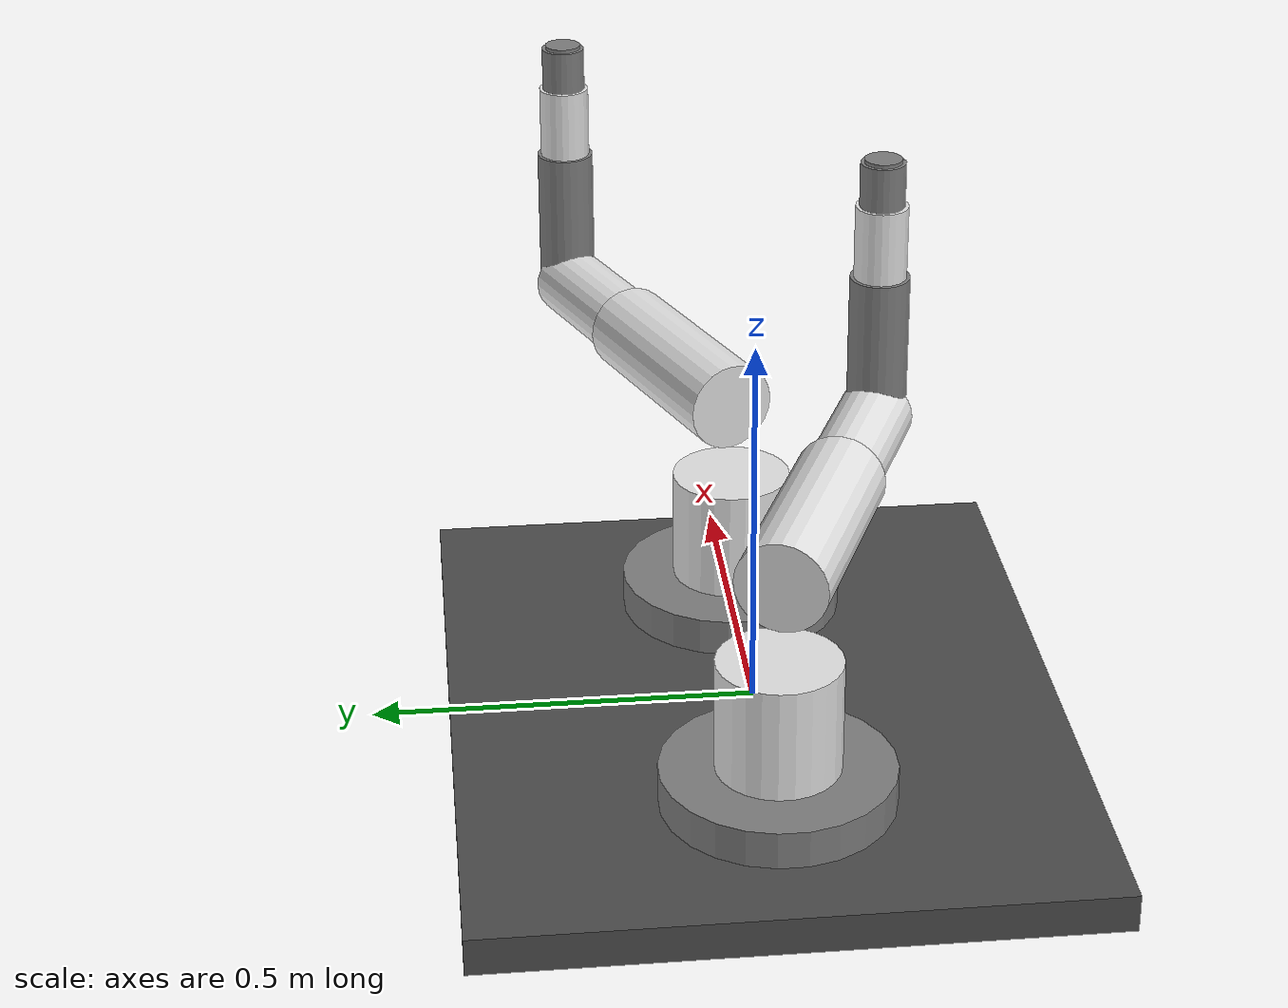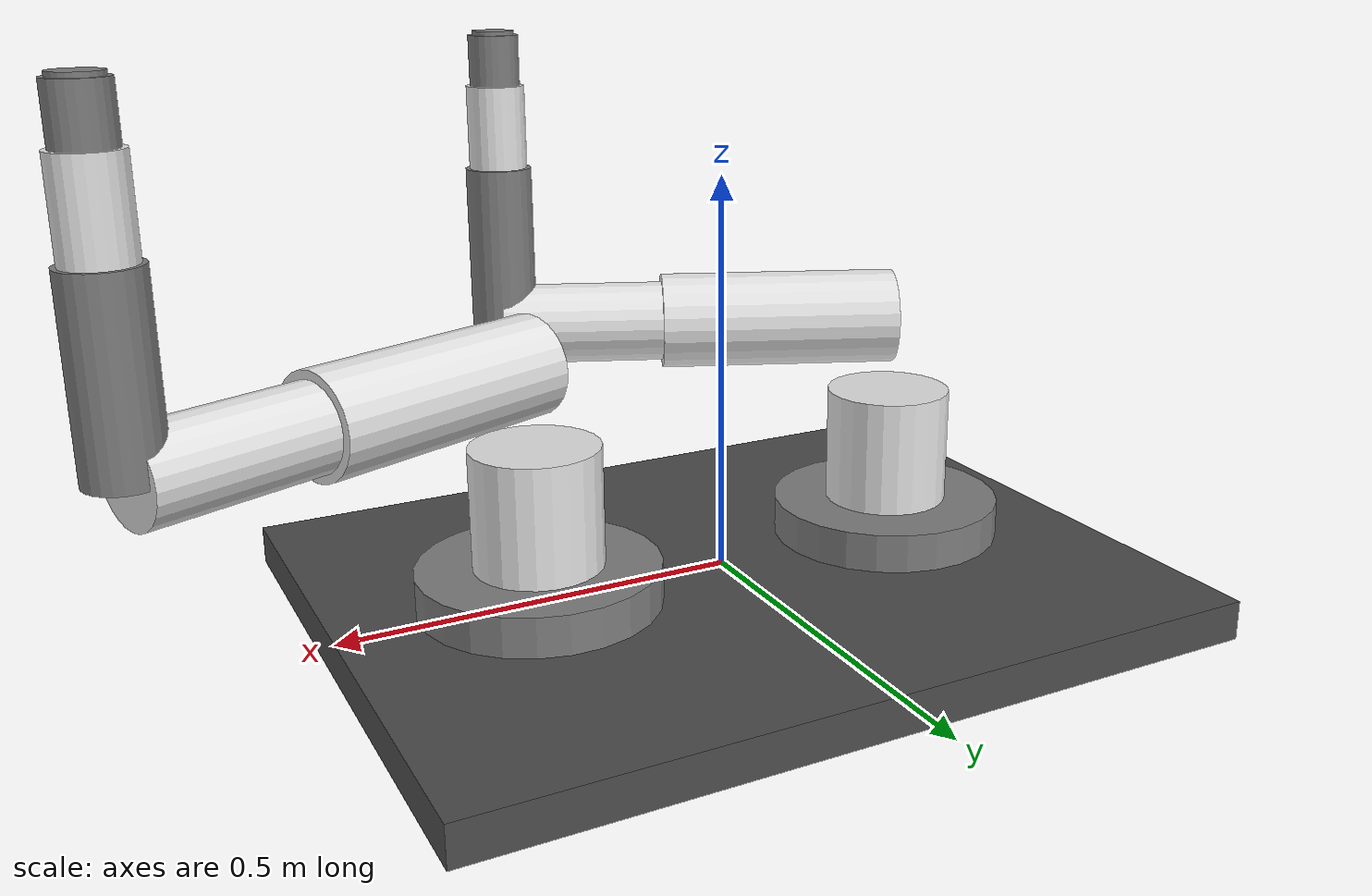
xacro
<?xml version="1.0"?>
<!-- Xacro version with macros for dual-arm system -->
<robot xmlns:xacro="http://www.ros.org/wiki/xacro" name="dual_crx10">

  <xacro:property name="pi" value="3.14159265359"/>

  <!-- Macro for creating a CRX-10iA arm -->
  <xacro:macro name="crx10_arm" params="prefix parent xyz rpy">
    <!-- This macro would contain the arm definition -->
    <!-- For simplicity, we're using the full URDF above -->
  </xacro:macro>

  <!-- Include the base URDF -->
  <xacro:include filename="$(find dual_arm_controller)/urdf/dual_crx10.urdf"/>

</robot>

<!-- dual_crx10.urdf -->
```xml
<?xml version="1.0"?>
<!-- Dual CRX-10iA URDF with 45-degree angled configuration -->
<robot name="dual_crx10">

  <!-- World link -->
  <link name="world"/>

  <!-- Base platform -->
  <link name="base_platform">
    <visual>
      <geometry>
        <box size="1.0 0.8 0.05"/>
      </geometry>
      <origin xyz="0 0 -0.025" rpy="0 0 0"/>
      <material name="platform_gray">
        <color rgba="0.3 0.3 0.3 1.0"/>
      </material>
    </visual>
    <collision>
      <geometry>
        <box size="1.0 0.8 0.05"/>
      </geometry>
      <origin xyz="0 0 -0.025" rpy="0 0 0"/>
    </collision>
    <inertial>
      <mass value="50.0"/>
      <inertia ixx="2.0" ixy="0.0" ixz="0.0" iyy="2.5" iyz="0.0" izz="4.0"/>
    </inertial>
  </link>

  <joint name="world_to_platform" type="fixed">
    <parent link="world"/>
    <child link="base_platform"/>
    <origin xyz="0 0 0" rpy="0 0 0"/>
  </joint>

  <!-- LEFT ARM MOUNTING (rotated -22.5 degrees) -->
  <joint name="platform_to_left_base" type="fixed">
    <parent link="base_platform"/>
    <child link="left_base_link"/>
    <origin xyz="-0.25 0 0" rpy="0 0 -0.3927"/>  <!-- -22.5 degrees = -0.3927 rad -->
  </joint>

  <!-- LEFT ARM BASE -->
  <link name="left_base_link">
    <visual>
      <geometry>
        <cylinder length="0.1" radius="0.15"/>
      </geometry>
      <material name="gray">
        <color rgba="0.5 0.5 0.5 1.0"/>
      </material>
    </visual>
    <collision>
      <geometry>
        <cylinder length="0.1" radius="0.15"/>
      </geometry>
    </collision>
    <inertial>
      <mass value="10.0"/>
      <inertia ixx="0.1" ixy="0.0" ixz="0.0" iyy="0.1" iyz="0.0" izz="0.1"/>
    </inertial>
  </link>

  <!-- LEFT ARM JOINTS (simplified 6-DOF) -->
  <joint name="left_joint_1" type="revolute">
    <parent link="left_base_link"/>
    <child link="left_link_1"/>
    <origin xyz="0 0 0.1" rpy="0 0 0"/>
    <axis xyz="0 0 1"/>
    <limit lower="-3.14159" upper="3.14159" effort="100" velocity="2.0"/>
  </joint>

  <link name="left_link_1">
    <visual>
      <geometry>
        <cylinder length="0.2" radius="0.08"/>
      </geometry>
      <material name="white">
        <color rgba="0.9 0.9 0.9 1.0"/>
      </material>
    </visual>
    <collision>
      <geometry>
        <cylinder length="0.2" radius="0.08"/>
      </geometry>
    </collision>
    <inertial>
      <mass value="5.0"/>
      <inertia ixx="0.05" ixy="0.0" ixz="0.0" iyy="0.05" iyz="0.0" izz="0.05"/>
    </inertial>
  </link>

  <joint name="left_joint_2" type="revolute">
    <parent link="left_link_1"/>
    <child link="left_link_2"/>
    <origin xyz="0 0 0.2" rpy="0 0 0"/>
    <axis xyz="0 1 0"/>
    <limit lower="-1.91986" upper="1.91986" effort="100" velocity="2.0"/>
  </joint>

  <link name="left_link_2">
    <visual>
      <origin xyz="0.15 0 0" rpy="0 1.5708 0"/>
      <geometry>
        <cylinder length="0.3" radius="0.06"/>
      </geometry>
      <material name="white"/>
    </visual>
    <collision>
      <origin xyz="0.15 0 0" rpy="0 1.5708 0"/>
      <geometry>
        <cylinder length="0.3" radius="0.06"/>
      </geometry>
    </collision>
    <inertial>
      <mass value="4.0"/>
      <inertia ixx="0.04" ixy="0.0" ixz="0.0" iyy="0.04" iyz="0.0" izz="0.04"/>
    </inertial>
  </link>

  <joint name="left_joint_3" type="revolute">
    <parent link="left_link_2"/>
    <child link="left_link_3"/>
    <origin xyz="0.3 0 0" rpy="0 0 0"/>
    <axis xyz="0 1 0"/>
    <limit lower="-2.35619" upper="2.35619" effort="80" velocity="2.0"/>
  </joint>

  <link name="left_link_3">
    <visual>
      <origin xyz="0.1 0 0" rpy="0 1.5708 0"/>
      <geometry>
        <cylinder length="0.2" radius="0.05"/>
      </geometry>
      <material name="white"/>
    </visual>
    <collision>
      <origin xyz="0.1 0 0" rpy="0 1.5708 0"/>
      <geometry>
        <cylinder length="0.2" radius="0.05"/>
      </geometry>
    </collision>
    <inertial>
      <mass value="3.0"/>
      <inertia ixx="0.03" ixy="0.0" ixz="0.0" iyy="0.03" iyz="0.0" izz="0.03"/>
    </inertial>
  </link>

  <joint name="left_joint_4" type="revolute">
    <parent link="left_link_3"/>
    <child link="left_link_4"/>
    <origin xyz="0.2 0 0" rpy="0 0 0"/>
    <axis xyz="1 0 0"/>
    <limit lower="-3.14159" upper="3.14159" effort="50" velocity="3.0"/>
  </joint>

  <link name="left_link_4">
    <visual>
      <origin xyz="0 0 0.1" rpy="0 0 0"/>
      <geometry>
        <cylinder length="0.2" radius="0.04"/>
      </geometry>
      <material name="gray"/>
    </visual>
    <collision>
      <origin xyz="0 0 0.1" rpy="0 0 0"/>
      <geometry>
        <cylinder length="0.2" radius="0.04"/>
      </geometry>
    </collision>
    <inertial>
      <mass value="2.0"/>
      <inertia ixx="0.02" ixy="0.0" ixz="0.0" iyy="0.02" iyz="0.0" izz="0.02"/>
    </inertial>
  </link>

  <joint name="left_joint_5" type="revolute">
    <parent link="left_link_4"/>
    <child link="left_link_5"/>
    <origin xyz="0 0 0.2" rpy="0 0 0"/>
    <axis xyz="0 1 0"/>
    <limit lower="-2.18166" upper="2.18166" effort="50" velocity="3.0"/>
  </joint>

  <link name="left_link_5">
    <visual>
      <origin xyz="0 0 0.05" rpy="0 0 0"/>
      <geometry>
        <cylinder length="0.1" radius="0.035"/>
      </geometry>
      <material name="white"/>
    </visual>
    <collision>
      <origin xyz="0 0 0.05" rpy="0 0 0"/>
      <geometry>
        <cylinder length="0.1" radius="0.035"/>
      </geometry>
    </collision>
    <inertial>
      <mass value="1.5"/>
      <inertia ixx="0.015" ixy="0.0" ixz="0.0" iyy="0.015" iyz="0.0" izz="0.015"/>
    </inertial>
  </link>

  <joint name="left_joint_6" type="revolute">
    <parent link="left_link_5"/>
    <child link="left_link_6"/>
    <origin xyz="0 0 0.1" rpy="0 0 0"/>
    <axis xyz="0 0 1"/>
    <limit lower="-6.28319" upper="6.28319" effort="30" velocity="3.0"/>
  </joint>

  <link name="left_link_6">
    <visual>
      <origin xyz="0 0 0.03" rpy="0 0 0"/>
      <geometry>
        <cylinder length="0.06" radius="0.03"/>
      </geometry>
      <material name="gray"/>
    </visual>
    <collision>
      <origin xyz="0 0 0.03" rpy="0 0 0"/>
      <geometry>
        <cylinder length="0.06" radius="0.03"/>
      </geometry>
    </collision>
    <inertial>
      <mass value="1.0"/>
      <inertia ixx="0.01" ixy="0.0" ixz="0.0" iyy="0.01" iyz="0.0" izz="0.01"/>
    </inertial>
  </link>

  <joint name="left_tool_flange_joint" type="fixed">
    <parent link="left_link_6"/>
    <child link="left_tool_flange"/>
    <origin xyz="0 0 0.06" rpy="0 0 0"/>
  </joint>

  <link name="left_tool_flange">
    <visual>
      <geometry>
        <cylinder length="0.01" radius="0.025"/>
      </geometry>
      <material name="gray"/>
    </visual>
  </link>

  <!-- RIGHT ARM MOUNTING (rotated +22.5 degrees) -->
  <joint name="platform_to_right_base" type="fixed">
    <parent link="base_platform"/>
    <child link="right_base_link"/>
    <origin xyz="0.25 0 0" rpy="0 0 0.3927"/>  <!-- +22.5 degrees = 0.3927 rad -->
  </joint>

  <!-- RIGHT ARM BASE -->
  <link name="right_base_link">
    <visual>
      <geometry>
        <cylinder length="0.1" radius="0.15"/>
      </geometry>
      <material name="gray"/>
    </visual>
    <collision>
      <geometry>
        <cylinder length="0.1" radius="0.15"/>
      </geometry>
    </collision>
    <inertial>
      <mass value="10.0"/>
      <inertia ixx="0.1" ixy="0.0" ixz="0.0" iyy="0.1" iyz="0.0" izz="0.1"/>
    </inertial>
  </link>

  <!-- RIGHT ARM JOINTS (mirror of left arm) -->
  <joint name="right_joint_1" type="revolute">
    <parent link="right_base_link"/>
    <child link="right_link_1"/>
    <origin xyz="0 0 0.1" rpy="0 0 0"/>
    <axis xyz="0 0 1"/>
    <limit lower="-3.14159" upper="3.14159" effort="100" velocity="2.0"/>
  </joint>

  <link name="right_link_1">
    <visual>
      <geometry>
        <cylinder length="0.2" radius="0.08"/>
      </geometry>
      <material name="white"/>
    </visual>
    <collision>
      <geometry>
        <cylinder length="0.2" radius="0.08"/>
      </geometry>
    </collision>
    <inertial>
      <mass value="5.0"/>
      <inertia ixx="0.05" ixy="0.0" ixz="0.0" iyy="0.05" iyz="0.0" izz="0.05"/>
    </inertial>
  </link>

  <joint name="right_joint_2" type="revolute">
    <parent link="right_link_1"/>
    <child link="right_link_2"/>
    <origin xyz="0 0 0.2" rpy="0 0 0"/>
    <axis xyz="0 1 0"/>
    <limit lower="-1.91986" upper="1.91986" effort="100" velocity="2.0"/>
  </joint>

  <link name="right_link_2">
    <visual>
      <origin xyz="0.15 0 0" rpy="0 1.5708 0"/>
      <geometry>
        <cylinder length="0.3" radius="0.06"/>
      </geometry>
      <material name="white"/>
    </visual>
    <collision>
      <origin xyz="0.15 0 0" rpy="0 1.5708 0"/>
      <geometry>
        <cylinder length="0.3" radius="0.06"/>
      </geometry>
    </collision>
    <inertial>
      <mass value="4.0"/>
      <inertia ixx="0.04" ixy="0.0" ixz="0.0" iyy="0.04" iyz="0.0" izz="0.04"/>
    </inertial>
  </link>
  <joint name="right_joint_3" type="revolute">
    <parent link="right_link_2"/>
    <child link="right_link_3"/>
    <origin xyz="0.3 0 0" rpy="0 0 0"/>
    <axis xyz="0 1 0"/>
    <limit lower="-2.35619" upper="2.35619" effort="80" velocity="2.0"/>
  </joint>
  <link name="right_link_3">
    <visual>
      <origin xyz="0.1 0 0" rpy="0 1.5708 0"/>
      <geometry>
        <cylinder length="0.2" radius="0.05"/>
      </geometry>
      <material name="white"/>
    </visual>
    <collision>
      <origin xyz="0.1 0 0" rpy="0 1.5708 0"/>
      <geometry>
        <cylinder length="0.2" radius="0.05"/>
      </geometry>
    </collision>
    <inertial>
      <mass value="3.0"/>
      <inertia ixx="0.03" ixy="0.0" ixz="0.0" iyy="0.03" iyz="0.0" izz="0.03"/>
    </inertial>
  </link>
  <joint name="right_joint_4" type="revolute">
    <parent link="right_link_3"/>
    <child link="right_link_4"/>
    <origin xyz="0.2 0 0" rpy="0 0 0"/>
    <axis xyz="1 0 0"/>
    <limit lower="-3.14159" upper="3.14159" effort="50" velocity="3.0"/>
  </joint>
  <link name="right_link_4">
    <visual>
      <origin xyz="0 0 0.1" rpy="0 0 0"/>
      <geometry>
        <cylinder length="0.2" radius="0.04"/>
      </geometry>
      <material name="gray"/>
    </visual>
    <collision>
      <origin xyz="0 0 0.1" rpy="0 0 0"/>
      <geometry>
        <cylinder length="0.2" radius="0.04"/>
      </geometry>
    </collision>
    <inertial>
      <mass value="2.0"/>
      <inertia ixx="0.02" ixy="0.0" ixz="0.0" iyy="0.02" iyz="0.0" izz="0.02"/>
    </inertial>
  </link>
  <joint name="right_joint_5" type="revolute">
    <parent link="right_link_4"/>
    <child link="right_link_5"/>
    <origin xyz="0 0 0.2" rpy="0 0 0"/>
    <axis xyz="0 1 0"/>
    <limit lower="-2.18166" upper="2.18166" effort="50" velocity="3.0"/>
  </joint>
  <link name="right_link_5">
    <visual>
      <origin xyz="0 0 0.05" rpy="0 0 0"/>
      <geometry>
        <cylinder length="0.1" radius="0.035"/>
      </geometry>
      <material name="white"/>
    </visual>
    <collision>
      <origin xyz="0 0 0.05" rpy="0 0 0"/>
      <geometry>
        <cylinder length="0.1" radius="0.035"/>
      </geometry>
    </collision>
    <inertial>
      <mass value="1.5"/>
      <inertia ixx="0.015" ixy="0.0" ixz="0.0" iyy="0.015" iyz="0.0" izz="0.015"/>
    </inertial>
  </link>
  <joint name="right_joint_6" type="revolute">
    <parent link="right_link_5"/>
    <child link="right_link_6"/>
    <origin xyz="0 0 0.1" rpy="0 0 0"/>
    <axis xyz="0 0 1"/>
    <limit lower="-6.28319" upper="6.28319" effort="30" velocity="3.0"/>
  </joint>
  <link name="right_link_6">
    <visual>
      <origin xyz="0 0 0.03" rpy="0 0 0"/>
      <geometry>
        <cylinder length="0.06" radius="0.03"/>
      </geometry>
      <material name="gray"/>
    </visual>
    <collision>
      <origin xyz="0 0 0.03" rpy="0 0 0"/>
      <geometry>
        <cylinder length="0.06" radius="0.03"/>
      </geometry>
    </collision>
    <inertial>
      <mass value="1.0"/>
      <inertia ixx="0.01" ixy="0.0" ixz="0.0" iyy="0.01" iyz="0.0" izz="0.01"/>
    </inertial>
  </link>
  <joint name="right_tool_flange_joint" type="fixed">
    <parent link="right_link_6"/>
    <child link="right_tool_flange"/>
    <origin xyz="0 0 0.06" rpy="0 0 0"/>
  </joint>
  <link name="right_tool_flange">
    <visual>
      <geometry>
        <cylinder length="0.01" radius="0.025"/>
      </geometry>
      <material name="gray"/>
    </visual>
  </link>
</robot>
`````
